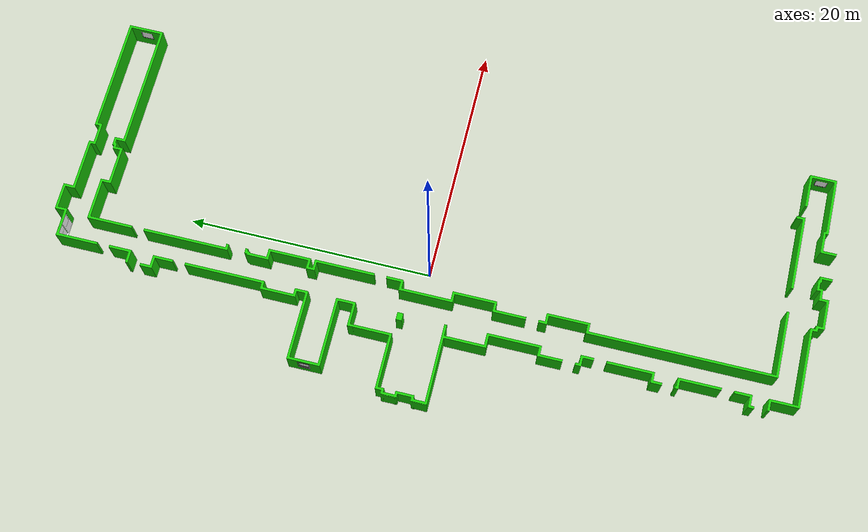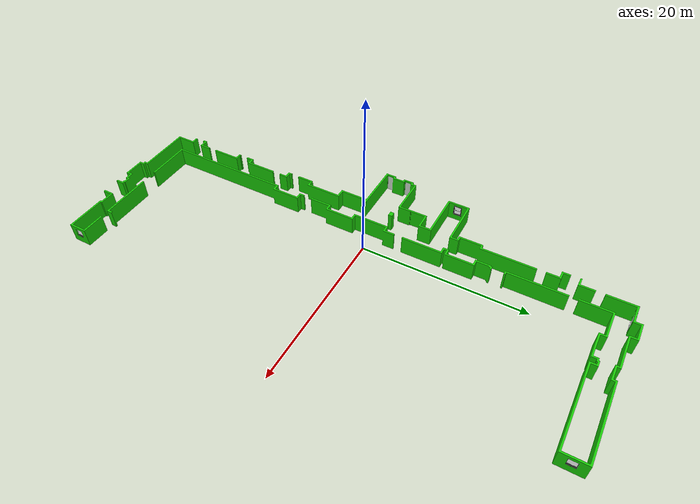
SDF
<?xml version="1.0"?>
<sdf version='1.6'>
  <model name='SLAM_Hallway'>
    <link name='SLAM_Hallway'>
      <pose frame=''>0 0 1.1929 0 -0 3.142</pose>
      <inertial>
        <pose frame=''>-4.1092 -1.38 -2.0568 0 -0 0</pose>
        <mass>25709</mass>
        <inertia>
          <ixx>8.1871e+06</ixx>
          <ixy>-6.35011e-11</ixy>
          <ixz>977800</ixz>
          <iyy>8.6249e+06</iyy>
          <iyz>-5.11868e-10</iyz>
          <izz>470450</izz>
        </inertia>
      </inertial>
      <collision name='SLAM_Hallway_collision'>
        <pose frame=''>0 0 0 0 -0 0</pose>
        <geometry>
          <mesh>
            <scale>1 1 1</scale>
            <uri>model://SLAM_Hallway/meshes/SLAM_Hallway.dae</uri>
          </mesh>
        </geometry>
      </collision>
      <visual name='SLAM_Hallway_visual'>
        <pose frame=''>0 0 0 0 -0 0</pose>
        <geometry>
          <mesh>
            <scale>1 1 1</scale>
            <uri>model://SLAM_Hallway/meshes/SLAM_Hallway.dae</uri>
          </mesh>
        </geometry>
      </visual>
    </link>
  </model>
</sdf>
